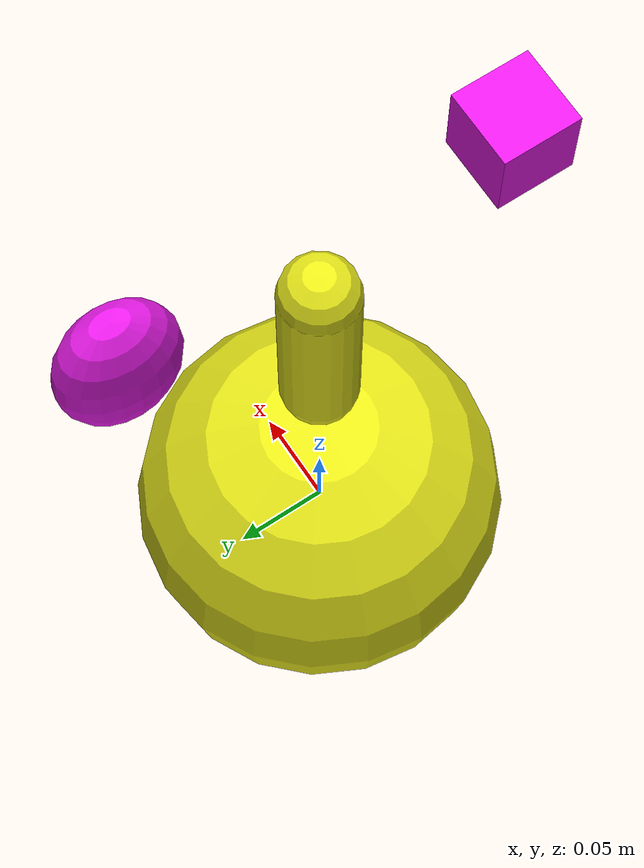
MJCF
<mujoco>
  <worldbody>
    <body pos="0 0 0">
      <geom type="sphere" size=".1" rgba=".9 .9 .1 1"/>
      <geom type="capsule" pos="0 0 .2" size=".02 .05" rgba=".9 .9 .1 1"/>
      <site type="box" pos="0 -.1 .3" size=".02 .02 .02" rgba=".9 .1 .9 1"/>
      <site type="ellipsoid" pos="0 .1 .3" size=".02 .03 .04" rgba=".9 .1 .9 1"/>
    </body>
  </worldbody>
</mujoco>
